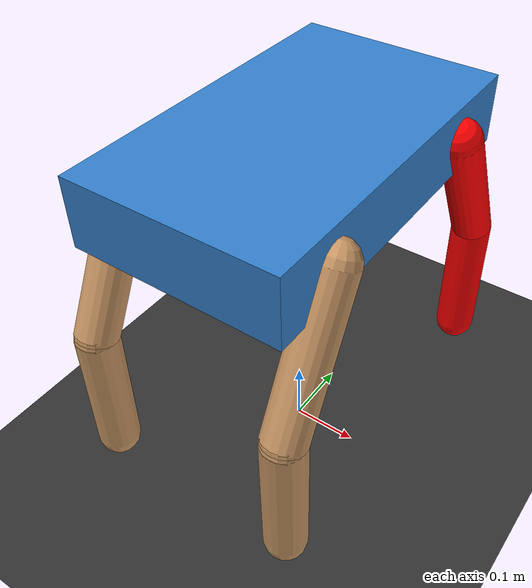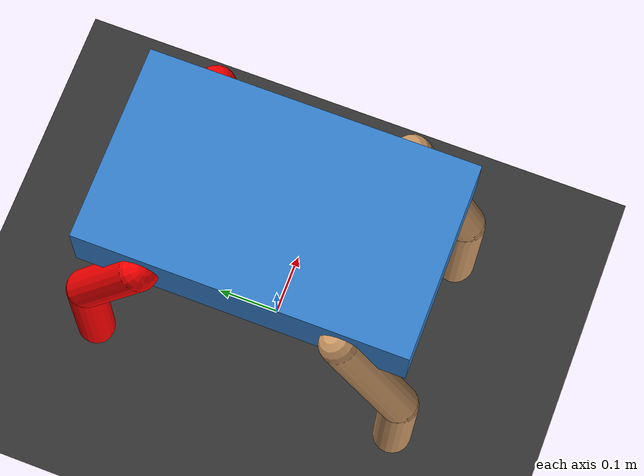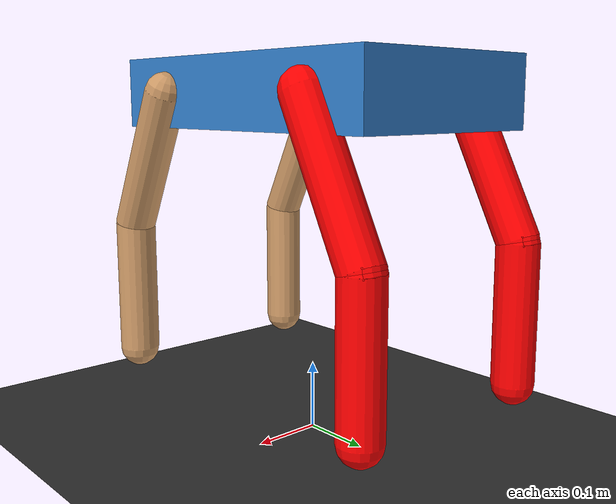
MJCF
<mujoco model="air_cylinder_quadruped">
  <option timestep="0.005" gravity="0 0 -9.81"/>

  <default>
    <joint damping="1.0" frictionloss="0.5"/>
    <motor gear="100" ctrllimited="true" ctrlrange="-1 1"/>
    <geom size="0.05"/>
  </default>

  <worldbody>
    <light pos="0 0 3" dir="0 0 -1" diffuse="1 1 1"/>
    <geom name="floor" type="plane" size="5 5 0.1" rgba="0.2 0.2 0.2 1" friction="1.5 0.1 0.1"/>

    <!-- 胴体 -->
    <body name="torso" pos="0 0 0.5">
      <joint type="free"/>
      <geom type="box" size="0.15 0.25 0.05" rgba="0.2 0.5 0.8 1" density="1000"/>

      <!-- Front Left Leg (赤色) -->
      <body name="FL_hip" pos="-0.15 0.15 0">
        <joint name="FL_hip_joint" axis="1 0 0" range="20 90"/>
        <geom type="capsule" fromto="0 0 0 0 0.1 -0.2" size="0.03" rgba="1 0 0 1" density="1000"/>
        <body name="FL_knee" pos="0 0.1 -0.2">
          <joint name="FL_knee_joint" axis="1 0 0" range="-90 -20"/>
          <geom type="capsule" fromto="0 0 0 0 0 -0.2" size="0.03" rgba="1 0 0 1" density="800"/>
        </body>
      </body>

      <!-- Front Right Leg (赤色) -->
      <body name="FR_hip" pos="0.15 0.15 0">
        <joint name="FR_hip_joint" axis="1 0 0" range="20 90"/>
        <geom type="capsule" fromto="0 0 0 0 0.1 -0.2" size="0.03" rgba="1 0 0 1" density="1000"/>
        <body name="FR_knee" pos="0 0.1 -0.2">
          <joint name="FR_knee_joint" axis="1 0 0" range="-90 -20"/>
          <geom type="capsule" fromto="0 0 0 0 0 -0.2" size="0.03" rgba="1 0 0 1" density="800"/>
        </body>
      </body>

      <!-- Back Left Leg -->
      <body name="BL_hip" pos="-0.15 -0.15 0">
        <joint name="BL_hip_joint" axis="1 0 0" range="-90 -20"/>
        <geom type="capsule" fromto="0 0 0 0 -0.1 -0.2" size="0.03" rgba="0.8 0.6 0.4 1" density="1000"/>
        <body name="BL_knee" pos="0 -0.1 -0.2">
          <joint name="BL_knee_joint" axis="1 0 0" range="20 90"/>
          <geom type="capsule" fromto="0 0 0 0 0 -0.2" size="0.03" rgba="0.8 0.6 0.4 1" density="800"/>
        </body>
      </body>

      <!-- Back Right Leg -->
      <body name="BR_hip" pos="0.15 -0.15 0">
        <joint name="BR_hip_joint" axis="1 0 0" range="-90 -20"/>
        <geom type="capsule" fromto="0 0 0 0 -0.1 -0.2" size="0.03" rgba="0.8 0.6 0.4 1" density="1000"/>
        <body name="BR_knee" pos="0 -0.1 -0.2">
          <joint name="BR_knee_joint" axis="1 0 0" range="20 90"/>
          <geom type="capsule" fromto="0 0 0 0 0 -0.2" size="0.03" rgba="0.8 0.6 0.4 1" density="800"/>
        </body>
      </body>

    </body>
  </worldbody>

  <actuator>
    <motor name="FL_hip_act" joint="FL_hip_joint"/>
    <motor name="FL_knee_act" joint="FL_knee_joint"/>
    <motor name="FR_hip_act" joint="FR_hip_joint"/>
    <motor name="FR_knee_act" joint="FR_knee_joint"/>
    <motor name="BL_hip_act" joint="BL_hip_joint"/>
    <motor name="BL_knee_act" joint="BL_knee_joint"/>
    <motor name="BR_hip_act" joint="BR_hip_joint"/>
    <motor name="BR_knee_act" joint="BR_knee_joint"/>
  </actuator>
</mujoco>
